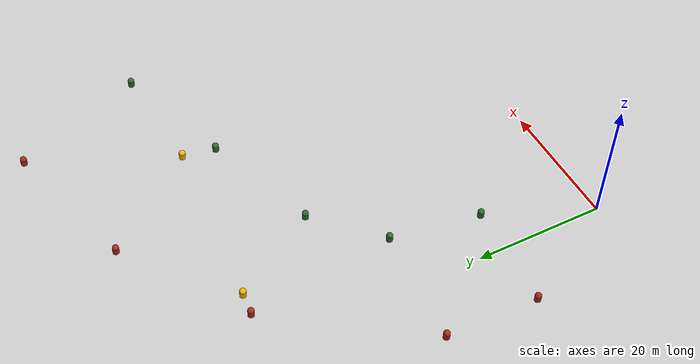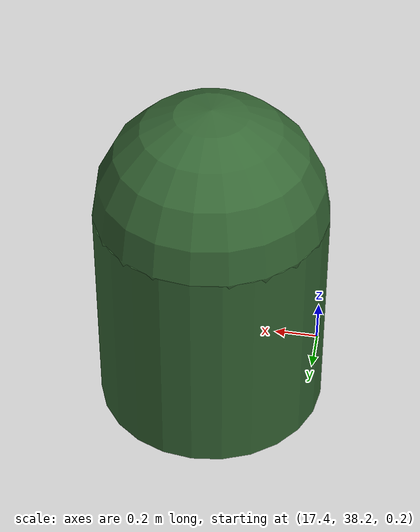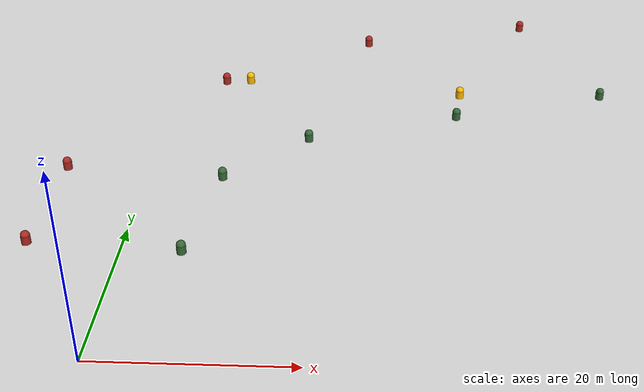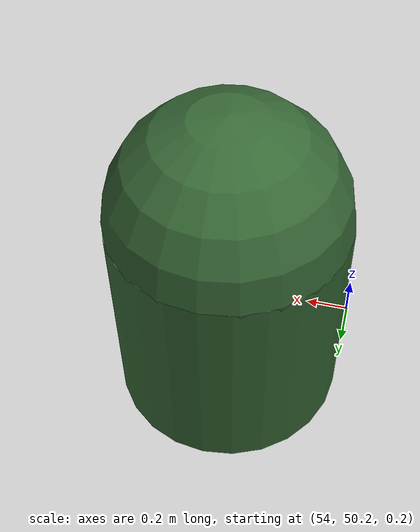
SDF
<sdf version="1.7">
 <world name="default">
  <light name="sun" type="directional">
   <pose>0 0 10 0 -0 0</pose>
   <diffuse>0.8 0.8 0.8 1</diffuse>
   <specular>0.2 0.2 0.2 1</specular>
   <attenuation>
    <range>1000</range>
    <constant>0.9</constant>
    <linear>0.01</linear>
    <quadratic>0.001</quadratic>
   </attenuation>
   <direction>-0.5 0.1 -0.9</direction>
   <spot><inner_angle>0</inner_angle><outer_angle>0</outer_angle><falloff>0</falloff></spot>
  </light>
  <physics name="default_physics" default="0" type="ode">
   <ode>
    <solver>
     <type>quick</type>
     <iters>100</iters>
     <sor>1</sor>
     <use_dynamic_moi_rescaling>0</use_dynamic_moi_rescaling>
    </solver>
    <constraints>
     <cfm>0</cfm>
     <erp>0.9</erp>
     <contact_max_correcting_vel>0.1</contact_max_correcting_vel>
     <contact_surface_layer>0</contact_surface_layer>
    </constraints>
   </ode>
   <real_time_update_rate>-1</real_time_update_rate>
   <max_step_size>0.001</max_step_size>
   <real_time_factor>1</real_time_factor>
  </physics>
  <gravity>0 0 -9.8</gravity>
  <magnetic_field>6e-06 2.3e-05 -4.2e-05</magnetic_field>
  <atmosphere type="adiabatic"/>
  <scene><ambient>0.4 0.4 0.4 1</ambient><background>0.7 0.7 0.7 1</background><shadows>0</shadows></scene>
  <spherical_coordinates>
   <surface_model>EARTH_WGS84</surface_model>
   <latitude_deg>0</latitude_deg>
   <longitude_deg>0</longitude_deg>
   <elevation>0</elevation>
   <heading_deg>0</heading_deg>
  </spherical_coordinates>
  <model name="kirmizi_duba_ral3000">
   <link name="link_0">
    <inertial>
     <mass>1</mass>
     <inertia><ixx>0.145833</ixx><ixy>0</ixy><ixz>0</ixz><iyy>0.145833</iyy><iyz>0</iyz><izz>0.125</izz></inertia>
    </inertial>
    <pose>0 0 -0.25 0 -0 0</pose>
    <gravity>0</gravity>
    <visual name="visual">
     <geometry><cylinder><radius>0.5</radius><length>1</length></cylinder></geometry>
     <material>
      <lighting>1</lighting>
      <script><uri>file://media/materials/scripts/gazebo.material</uri><name>Gazebo/Grey</name></script>
      <shader type="pixel"><normal_map>__default__</normal_map></shader>
      <ambient>0.655 0.161 0.125 1</ambient>
      <diffuse>0.655 0.161 0.125 1</diffuse>
      <specular>0.655 0.161 0.125 1</specular>
      <emissive>0.655 0.161 0.125 1</emissive>
     </material>
    </visual>
    <collision name="collision">
     <geometry><cylinder><radius>0.5</radius><length>1</length></cylinder></geometry>
     <surface>
      <friction>
       <ode><mu>1</mu><mu2>1</mu2><fdir1>0 0 0</fdir1><slip1>0</slip1><slip2>0</slip2></ode>
       <torsional>
        <coefficient>1</coefficient>
        <patch_radius>0</patch_radius>
        <surface_radius>0</surface_radius>
        <use_patch_radius>1</use_patch_radius>
        <ode><slip>0</slip></ode>
       </torsional>
      </friction>
      <bounce><restitution_coefficient>0</restitution_coefficient><threshold>1e+06</threshold></bounce>
      <contact>
       <collide_without_contact>0</collide_without_contact>
       <collide_without_contact_bitmask>1</collide_without_contact_bitmask>
       <collide_bitmask>1</collide_bitmask>
       <ode>
        <soft_cfm>0</soft_cfm>
        <soft_erp>0.2</soft_erp>
        <kp>1e+13</kp>
        <kd>1</kd>
        <max_vel>0.01</max_vel>
        <min_depth>0</min_depth>
       </ode>
       <bullet>
        <split_impulse>1</split_impulse>
        <split_impulse_penetration_threshold>-0.01</split_impulse_penetration_threshold>
        <soft_cfm>0</soft_cfm>
        <soft_erp>0.2</soft_erp>
        <kp>1e+13</kp>
        <kd>1</kd>
       </bullet>
      </contact>
     </surface>
    </collision>
   </link>
   <link name="link_1">
    <inertial>
     <mass>1</mass>
     <inertia><ixx>0.1</ixx><ixy>0</ixy><ixz>0</ixz><iyy>0.1</iyy><iyz>0</iyz><izz>0.1</izz></inertia>
    </inertial>
    <pose>0 0 0.25 0 -0 0</pose>
    <gravity>0</gravity>
    <visual name="visual">
     <geometry><sphere><radius>0.5</radius></sphere></geometry>
     <material>
      <lighting>1</lighting>
      <script><uri>file://media/materials/scripts/gazebo.material</uri><name>Gazebo/Grey</name></script>
      <shader type="pixel"><normal_map>__default__</normal_map></shader>
      <ambient>0.655 0.161 0.125 1</ambient>
      <diffuse>0.655 0.161 0.125 1</diffuse>
      <specular>0.655 0.161 0.125 1</specular>
      <emissive>0.655 0.161 0.125 1</emissive>
     </material>
    </visual>
    <collision name="collision">
     <geometry><sphere><radius>0.5</radius></sphere></geometry>
     <surface>
      <friction>
       <ode><mu>1</mu><mu2>1</mu2><fdir1>0 0 0</fdir1><slip1>0</slip1><slip2>0</slip2></ode>
       <torsional>
        <coefficient>1</coefficient>
        <patch_radius>0</patch_radius>
        <surface_radius>0</surface_radius>
        <use_patch_radius>1</use_patch_radius>
        <ode><slip>0</slip></ode>
       </torsional>
      </friction>
      <bounce><restitution_coefficient>0</restitution_coefficient><threshold>1e+06</threshold></bounce>
      <contact>
       <collide_without_contact>0</collide_without_contact>
       <collide_without_contact_bitmask>1</collide_without_contact_bitmask>
       <collide_bitmask>1</collide_bitmask>
       <ode>
        <soft_cfm>0</soft_cfm>
        <soft_erp>0.2</soft_erp>
        <kp>1e+13</kp>
        <kd>1</kd>
        <max_vel>0.01</max_vel>
        <min_depth>0</min_depth>
       </ode>
       <bullet>
        <split_impulse>1</split_impulse>
        <split_impulse_penetration_threshold>-0.01</split_impulse_penetration_threshold>
        <soft_cfm>0</soft_cfm>
        <soft_erp>0.2</soft_erp>
        <kp>1e+13</kp>
        <kd>1</kd>
       </bullet>
      </contact>
     </surface>
    </collision>
   </link>
   <static>0</static>
   <pose>-9.81686 16.9065 1 0 -0 0</pose>
  </model>
  <model name="kirmizi_duba_ral3000_0">
   <link name="link_0">
    <inertial>
     <mass>1</mass>
     <inertia><ixx>0.145833</ixx><ixy>0</ixy><ixz>0</ixz><iyy>0.145833</iyy><iyz>0</iyz><izz>0.125</izz></inertia>
    </inertial>
    <pose>0 0 -0.25 0 -0 0</pose>
    <gravity>0</gravity>
    <visual name="visual">
     <geometry><cylinder><radius>0.5</radius><length>1</length></cylinder></geometry>
     <material>
      <lighting>1</lighting>
      <script><uri>file://media/materials/scripts/gazebo.material</uri><name>Gazebo/Grey</name></script>
      <shader type="pixel"><normal_map>__default__</normal_map></shader>
      <ambient>0.655 0.161 0.125 1</ambient>
      <diffuse>0.655 0.161 0.125 1</diffuse>
      <specular>0.655 0.161 0.125 1</specular>
      <emissive>0.655 0.161 0.125 1</emissive>
     </material>
    </visual>
    <collision name="collision">
     <geometry><cylinder><radius>0.5</radius><length>1</length></cylinder></geometry>
     <surface>
      <friction>
       <ode><mu>1</mu><mu2>1</mu2><fdir1>0 0 0</fdir1><slip1>0</slip1><slip2>0</slip2></ode>
       <torsional>
        <coefficient>1</coefficient>
        <patch_radius>0</patch_radius>
        <surface_radius>0</surface_radius>
        <use_patch_radius>1</use_patch_radius>
        <ode><slip>0</slip></ode>
       </torsional>
      </friction>
      <bounce><restitution_coefficient>0</restitution_coefficient><threshold>1e+06</threshold></bounce>
      <contact>
       <collide_without_contact>0</collide_without_contact>
       <collide_without_contact_bitmask>1</collide_without_contact_bitmask>
       <collide_bitmask>1</collide_bitmask>
       <ode>
        <soft_cfm>0</soft_cfm>
        <soft_erp>0.2</soft_erp>
        <kp>1e+13</kp>
        <kd>1</kd>
        <max_vel>0.01</max_vel>
        <min_depth>0</min_depth>
       </ode>
       <bullet>
        <split_impulse>1</split_impulse>
        <split_impulse_penetration_threshold>-0.01</split_impulse_penetration_threshold>
        <soft_cfm>0</soft_cfm>
        <soft_erp>0.2</soft_erp>
        <kp>1e+13</kp>
        <kd>1</kd>
       </bullet>
      </contact>
     </surface>
    </collision>
   </link>
   <link name="link_1">
    <inertial>
     <mass>1</mass>
     <inertia><ixx>0.1</ixx><ixy>0</ixy><ixz>0</ixz><iyy>0.1</iyy><iyz>0</iyz><izz>0.1</izz></inertia>
    </inertial>
    <pose>0 0 0.25 0 -0 0</pose>
    <gravity>0</gravity>
    <visual name="visual">
     <geometry><sphere><radius>0.5</radius></sphere></geometry>
     <material>
      <lighting>1</lighting>
      <script><uri>file://media/materials/scripts/gazebo.material</uri><name>Gazebo/Grey</name></script>
      <shader type="pixel"><normal_map>__default__</normal_map></shader>
      <ambient>0.655 0.161 0.125 1</ambient>
      <diffuse>0.655 0.161 0.125 1</diffuse>
      <specular>0.655 0.161 0.125 1</specular>
      <emissive>0.655 0.161 0.125 1</emissive>
     </material>
    </visual>
    <collision name="collision">
     <geometry><sphere><radius>0.5</radius></sphere></geometry>
     <surface>
      <friction>
       <ode><mu>1</mu><mu2>1</mu2><fdir1>0 0 0</fdir1><slip1>0</slip1><slip2>0</slip2></ode>
       <torsional>
        <coefficient>1</coefficient>
        <patch_radius>0</patch_radius>
        <surface_radius>0</surface_radius>
        <use_patch_radius>1</use_patch_radius>
        <ode><slip>0</slip></ode>
       </torsional>
      </friction>
      <bounce><restitution_coefficient>0</restitution_coefficient><threshold>1e+06</threshold></bounce>
      <contact>
       <collide_without_contact>0</collide_without_contact>
       <collide_without_contact_bitmask>1</collide_without_contact_bitmask>
       <collide_bitmask>1</collide_bitmask>
       <ode>
        <soft_cfm>0</soft_cfm>
        <soft_erp>0.2</soft_erp>
        <kp>1e+13</kp>
        <kd>1</kd>
        <max_vel>0.01</max_vel>
        <min_depth>0</min_depth>
       </ode>
       <bullet>
        <split_impulse>1</split_impulse>
        <split_impulse_penetration_threshold>-0.01</split_impulse_penetration_threshold>
        <soft_cfm>0</soft_cfm>
        <soft_erp>0.2</soft_erp>
        <kp>1e+13</kp>
        <kd>1</kd>
       </bullet>
      </contact>
     </surface>
    </collision>
   </link>
   <static>0</static>
   <pose>-9.39586 31.2918 1 0 -0 0</pose>
  </model>
  <model name="kirmizi_duba_ral3000_1">
   <link name="link_0">
    <inertial>
     <mass>1</mass>
     <inertia><ixx>0.145833</ixx><ixy>0</ixy><ixz>0</ixz><iyy>0.145833</iyy><iyz>0</iyz><izz>0.125</izz></inertia>
    </inertial>
    <pose>0 0 -0.25 0 -0 0</pose>
    <gravity>0</gravity>
    <visual name="visual">
     <geometry><cylinder><radius>0.5</radius><length>1</length></cylinder></geometry>
     <material>
      <lighting>1</lighting>
      <script><uri>file://media/materials/scripts/gazebo.material</uri><name>Gazebo/Grey</name></script>
      <shader type="pixel"><normal_map>__default__</normal_map></shader>
      <ambient>0.655 0.161 0.125 1</ambient>
      <diffuse>0.655 0.161 0.125 1</diffuse>
      <specular>0.655 0.161 0.125 1</specular>
      <emissive>0.655 0.161 0.125 1</emissive>
     </material>
    </visual>
    <collision name="collision">
     <geometry><cylinder><radius>0.5</radius><length>1</length></cylinder></geometry>
     <surface>
      <friction>
       <ode><mu>1</mu><mu2>1</mu2><fdir1>0 0 0</fdir1><slip1>0</slip1><slip2>0</slip2></ode>
       <torsional>
        <coefficient>1</coefficient>
        <patch_radius>0</patch_radius>
        <surface_radius>0</surface_radius>
        <use_patch_radius>1</use_patch_radius>
        <ode><slip>0</slip></ode>
       </torsional>
      </friction>
      <bounce><restitution_coefficient>0</restitution_coefficient><threshold>1e+06</threshold></bounce>
      <contact>
       <collide_without_contact>0</collide_without_contact>
       <collide_without_contact_bitmask>1</collide_without_contact_bitmask>
       <collide_bitmask>1</collide_bitmask>
       <ode>
        <soft_cfm>0</soft_cfm>
        <soft_erp>0.2</soft_erp>
        <kp>1e+13</kp>
        <kd>1</kd>
        <max_vel>0.01</max_vel>
        <min_depth>0</min_depth>
       </ode>
       <bullet>
        <split_impulse>1</split_impulse>
        <split_impulse_penetration_threshold>-0.01</split_impulse_penetration_threshold>
        <soft_cfm>0</soft_cfm>
        <soft_erp>0.2</soft_erp>
        <kp>1e+13</kp>
        <kd>1</kd>
       </bullet>
      </contact>
     </surface>
    </collision>
   </link>
   <link name="link_1">
    <inertial>
     <mass>1</mass>
     <inertia><ixx>0.1</ixx><ixy>0</ixy><ixz>0</ixz><iyy>0.1</iyy><iyz>0</iyz><izz>0.1</izz></inertia>
    </inertial>
    <pose>0 0 0.25 0 -0 0</pose>
    <gravity>0</gravity>
    <visual name="visual">
     <geometry><sphere><radius>0.5</radius></sphere></geometry>
     <material>
      <lighting>1</lighting>
      <script><uri>file://media/materials/scripts/gazebo.material</uri><name>Gazebo/Grey</name></script>
      <shader type="pixel"><normal_map>__default__</normal_map></shader>
      <ambient>0.655 0.161 0.125 1</ambient>
      <diffuse>0.655 0.161 0.125 1</diffuse>
      <specular>0.655 0.161 0.125 1</specular>
      <emissive>0.655 0.161 0.125 1</emissive>
     </material>
    </visual>
    <collision name="collision">
     <geometry><sphere><radius>0.5</radius></sphere></geometry>
     <surface>
      <friction>
       <ode><mu>1</mu><mu2>1</mu2><fdir1>0 0 0</fdir1><slip1>0</slip1><slip2>0</slip2></ode>
       <torsional>
        <coefficient>1</coefficient>
        <patch_radius>0</patch_radius>
        <surface_radius>0</surface_radius>
        <use_patch_radius>1</use_patch_radius>
        <ode><slip>0</slip></ode>
       </torsional>
      </friction>
      <bounce><restitution_coefficient>0</restitution_coefficient><threshold>1e+06</threshold></bounce>
      <contact>
       <collide_without_contact>0</collide_without_contact>
       <collide_without_contact_bitmask>1</collide_without_contact_bitmask>
       <collide_bitmask>1</collide_bitmask>
       <ode>
        <soft_cfm>0</soft_cfm>
        <soft_erp>0.2</soft_erp>
        <kp>1e+13</kp>
        <kd>1</kd>
        <max_vel>0.01</max_vel>
        <min_depth>0</min_depth>
       </ode>
       <bullet>
        <split_impulse>1</split_impulse>
        <split_impulse_penetration_threshold>-0.01</split_impulse_penetration_threshold>
        <soft_cfm>0</soft_cfm>
        <soft_erp>0.2</soft_erp>
        <kp>1e+13</kp>
        <kd>1</kd>
       </bullet>
      </contact>
     </surface>
    </collision>
   </link>
   <static>0</static>
   <pose>5.96171 53.0696 1 0 -0 0</pose>
  </model>
  <model name="kirmizi_duba_ral3000_2">
   <link name="link_0">
    <inertial>
     <mass>1</mass>
     <inertia><ixx>0.145833</ixx><ixy>0</ixy><ixz>0</ixz><iyy>0.145833</iyy><iyz>0</iyz><izz>0.125</izz></inertia>
    </inertial>
    <pose>0 0 -0.25 0 -0 0</pose>
    <gravity>0</gravity>
    <visual name="visual">
     <geometry><cylinder><radius>0.5</radius><length>1</length></cylinder></geometry>
     <material>
      <lighting>1</lighting>
      <script><uri>file://media/materials/scripts/gazebo.material</uri><name>Gazebo/Grey</name></script>
      <shader type="pixel"><normal_map>__default__</normal_map></shader>
      <ambient>0.655 0.161 0.125 1</ambient>
      <diffuse>0.655 0.161 0.125 1</diffuse>
      <specular>0.655 0.161 0.125 1</specular>
      <emissive>0.655 0.161 0.125 1</emissive>
     </material>
    </visual>
    <collision name="collision">
     <geometry><cylinder><radius>0.5</radius><length>1</length></cylinder></geometry>
     <surface>
      <friction>
       <ode><mu>1</mu><mu2>1</mu2><fdir1>0 0 0</fdir1><slip1>0</slip1><slip2>0</slip2></ode>
       <torsional>
        <coefficient>1</coefficient>
        <patch_radius>0</patch_radius>
        <surface_radius>0</surface_radius>
        <use_patch_radius>1</use_patch_radius>
        <ode><slip>0</slip></ode>
       </torsional>
      </friction>
      <bounce><restitution_coefficient>0</restitution_coefficient><threshold>1e+06</threshold></bounce>
      <contact>
       <collide_without_contact>0</collide_without_contact>
       <collide_without_contact_bitmask>1</collide_without_contact_bitmask>
       <collide_bitmask>1</collide_bitmask>
       <ode>
        <soft_cfm>0</soft_cfm>
        <soft_erp>0.2</soft_erp>
        <kp>1e+13</kp>
        <kd>1</kd>
        <max_vel>0.01</max_vel>
        <min_depth>0</min_depth>
       </ode>
       <bullet>
        <split_impulse>1</split_impulse>
        <split_impulse_penetration_threshold>-0.01</split_impulse_penetration_threshold>
        <soft_cfm>0</soft_cfm>
        <soft_erp>0.2</soft_erp>
        <kp>1e+13</kp>
        <kd>1</kd>
       </bullet>
      </contact>
     </surface>
    </collision>
   </link>
   <link name="link_1">
    <inertial>
     <mass>1</mass>
     <inertia><ixx>0.1</ixx><ixy>0</ixy><ixz>0</ixz><iyy>0.1</iyy><iyz>0</iyz><izz>0.1</izz></inertia>
    </inertial>
    <pose>0 0 0.25 0 -0 0</pose>
    <gravity>0</gravity>
    <visual name="visual">
     <geometry><sphere><radius>0.5</radius></sphere></geometry>
     <material>
      <lighting>1</lighting>
      <script><uri>file://media/materials/scripts/gazebo.material</uri><name>Gazebo/Grey</name></script>
      <shader type="pixel"><normal_map>__default__</normal_map></shader>
      <ambient>0.655 0.161 0.125 1</ambient>
      <diffuse>0.655 0.161 0.125 1</diffuse>
      <specular>0.655 0.161 0.125 1</specular>
      <emissive>0.655 0.161 0.125 1</emissive>
     </material>
    </visual>
    <collision name="collision">
     <geometry><sphere><radius>0.5</radius></sphere></geometry>
     <surface>
      <friction>
       <ode><mu>1</mu><mu2>1</mu2><fdir1>0 0 0</fdir1><slip1>0</slip1><slip2>0</slip2></ode>
       <torsional>
        <coefficient>1</coefficient>
        <patch_radius>0</patch_radius>
        <surface_radius>0</surface_radius>
        <use_patch_radius>1</use_patch_radius>
        <ode><slip>0</slip></ode>
       </torsional>
      </friction>
      <bounce><restitution_coefficient>0</restitution_coefficient><threshold>1e+06</threshold></bounce>
      <contact>
       <collide_without_contact>0</collide_without_contact>
       <collide_without_contact_bitmask>1</collide_without_contact_bitmask>
       <collide_bitmask>1</collide_bitmask>
       <ode>
        <soft_cfm>0</soft_cfm>
        <soft_erp>0.2</soft_erp>
        <kp>1e+13</kp>
        <kd>1</kd>
        <max_vel>0.01</max_vel>
        <min_depth>0</min_depth>
       </ode>
       <bullet>
        <split_impulse>1</split_impulse>
        <split_impulse_penetration_threshold>-0.01</split_impulse_penetration_threshold>
        <soft_cfm>0</soft_cfm>
        <soft_erp>0.2</soft_erp>
        <kp>1e+13</kp>
        <kd>1</kd>
       </bullet>
      </contact>
     </surface>
    </collision>
   </link>
   <static>0</static>
   <pose>24.5043 65.3736 1 0 -0 0</pose>
  </model>
  <model name="kirmizi_duba_ral3000_3">
   <link name="link_0">
    <inertial>
     <mass>1</mass>
     <inertia><ixx>0.145833</ixx><ixy>0</ixy><ixz>0</ixz><iyy>0.145833</iyy><iyz>0</iyz><izz>0.125</izz></inertia>
    </inertial>
    <pose>0 0 -0.25 0 -0 0</pose>
    <gravity>0</gravity>
    <visual name="visual">
     <geometry><cylinder><radius>0.5</radius><length>1</length></cylinder></geometry>
     <material>
      <lighting>1</lighting>
      <script><uri>file://media/materials/scripts/gazebo.material</uri><name>Gazebo/Grey</name></script>
      <shader type="pixel"><normal_map>__default__</normal_map></shader>
      <ambient>0.655 0.161 0.125 1</ambient>
      <diffuse>0.655 0.161 0.125 1</diffuse>
      <specular>0.655 0.161 0.125 1</specular>
      <emissive>0.655 0.161 0.125 1</emissive>
     </material>
    </visual>
    <collision name="collision">
     <geometry><cylinder><radius>0.5</radius><length>1</length></cylinder></geometry>
     <surface>
      <friction>
       <ode><mu>1</mu><mu2>1</mu2><fdir1>0 0 0</fdir1><slip1>0</slip1><slip2>0</slip2></ode>
       <torsional>
        <coefficient>1</coefficient>
        <patch_radius>0</patch_radius>
        <surface_radius>0</surface_radius>
        <use_patch_radius>1</use_patch_radius>
        <ode><slip>0</slip></ode>
       </torsional>
      </friction>
      <bounce><restitution_coefficient>0</restitution_coefficient><threshold>1e+06</threshold></bounce>
      <contact>
       <collide_without_contact>0</collide_without_contact>
       <collide_without_contact_bitmask>1</collide_without_contact_bitmask>
       <collide_bitmask>1</collide_bitmask>
       <ode>
        <soft_cfm>0</soft_cfm>
        <soft_erp>0.2</soft_erp>
        <kp>1e+13</kp>
        <kd>1</kd>
        <max_vel>0.01</max_vel>
        <min_depth>0</min_depth>
       </ode>
       <bullet>
        <split_impulse>1</split_impulse>
        <split_impulse_penetration_threshold>-0.01</split_impulse_penetration_threshold>
        <soft_cfm>0</soft_cfm>
        <soft_erp>0.2</soft_erp>
        <kp>1e+13</kp>
        <kd>1</kd>
       </bullet>
      </contact>
     </surface>
    </collision>
   </link>
   <link name="link_1">
    <inertial>
     <mass>1</mass>
     <inertia><ixx>0.1</ixx><ixy>0</ixy><ixz>0</ixz><iyy>0.1</iyy><iyz>0</iyz><izz>0.1</izz></inertia>
    </inertial>
    <pose>0 0 0.25 0 -0 0</pose>
    <gravity>0</gravity>
    <visual name="visual">
     <geometry><sphere><radius>0.5</radius></sphere></geometry>
     <material>
      <lighting>1</lighting>
      <script><uri>file://media/materials/scripts/gazebo.material</uri><name>Gazebo/Grey</name></script>
      <shader type="pixel"><normal_map>__default__</normal_map></shader>
      <ambient>0.655 0.161 0.125 1</ambient>
      <diffuse>0.655 0.161 0.125 1</diffuse>
      <specular>0.655 0.161 0.125 1</specular>
      <emissive>0.655 0.161 0.125 1</emissive>
     </material>
    </visual>
    <collision name="collision">
     <geometry><sphere><radius>0.5</radius></sphere></geometry>
     <surface>
      <friction>
       <ode><mu>1</mu><mu2>1</mu2><fdir1>0 0 0</fdir1><slip1>0</slip1><slip2>0</slip2></ode>
       <torsional>
        <coefficient>1</coefficient>
        <patch_radius>0</patch_radius>
        <surface_radius>0</surface_radius>
        <use_patch_radius>1</use_patch_radius>
        <ode><slip>0</slip></ode>
       </torsional>
      </friction>
      <bounce><restitution_coefficient>0</restitution_coefficient><threshold>1e+06</threshold></bounce>
      <contact>
       <collide_without_contact>0</collide_without_contact>
       <collide_without_contact_bitmask>1</collide_without_contact_bitmask>
       <collide_bitmask>1</collide_bitmask>
       <ode>
        <soft_cfm>0</soft_cfm>
        <soft_erp>0.2</soft_erp>
        <kp>1e+13</kp>
        <kd>1</kd>
        <max_vel>0.01</max_vel>
        <min_depth>0</min_depth>
       </ode>
       <bullet>
        <split_impulse>1</split_impulse>
        <split_impulse_penetration_threshold>-0.01</split_impulse_penetration_threshold>
        <soft_cfm>0</soft_cfm>
        <soft_erp>0.2</soft_erp>
        <kp>1e+13</kp>
        <kd>1</kd>
       </bullet>
      </contact>
     </surface>
    </collision>
   </link>
   <static>0</static>
   <pose>46.4143 71.3397 1 0 -0 0</pose>
  </model>
  <model name="yesil_duba_ral6001_0">
   <link name="link_0">
    <inertial>
     <mass>1</mass>
     <inertia><ixx>0.145833</ixx><ixy>0</ixy><ixz>0</ixz><iyy>0.145833</iyy><iyz>0</iyz><izz>0.125</izz></inertia>
    </inertial>
    <pose>0 0 -0.25 0 -0 0</pose>
    <gravity>0</gravity>
    <visual name="visual">
     <geometry><cylinder><radius>0.5</radius><length>1</length></cylinder></geometry>
     <material>
      <lighting>1</lighting>
      <script><uri>file://media/materials/scripts/gazebo.material</uri><name>Gazebo/Grey</name></script>
      <shader type="pixel"><normal_map>__default__</normal_map></shader>
      <ambient>0.212 0.404 0.208 1</ambient>
      <diffuse>0.212 0.404 0.208 1</diffuse>
      <specular>0.212 0.404 0.208 1</specular>
      <emissive>0.212 0.404 0.208 1</emissive>
     </material>
    </visual>
    <collision name="collision">
     <geometry><cylinder><radius>0.5</radius><length>1</length></cylinder></geometry>
     <surface>
      <friction>
       <ode><mu>1</mu><mu2>1</mu2><fdir1>0 0 0</fdir1><slip1>0</slip1><slip2>0</slip2></ode>
       <torsional>
        <coefficient>1</coefficient>
        <patch_radius>0</patch_radius>
        <surface_radius>0</surface_radius>
        <use_patch_radius>1</use_patch_radius>
        <ode><slip>0</slip></ode>
       </torsional>
      </friction>
      <bounce><restitution_coefficient>0</restitution_coefficient><threshold>1e+06</threshold></bounce>
      <contact>
       <collide_without_contact>0</collide_without_contact>
       <collide_without_contact_bitmask>1</collide_without_contact_bitmask>
       <collide_bitmask>1</collide_bitmask>
       <ode>
        <soft_cfm>0</soft_cfm>
        <soft_erp>0.2</soft_erp>
        <kp>1e+13</kp>
        <kd>1</kd>
        <max_vel>0.01</max_vel>
        <min_depth>0</min_depth>
       </ode>
       <bullet>
        <split_impulse>1</split_impulse>
        <split_impulse_penetration_threshold>-0.01</split_impulse_penetration_threshold>
        <soft_cfm>0</soft_cfm>
        <soft_erp>0.2</soft_erp>
        <kp>1e+13</kp>
        <kd>1</kd>
       </bullet>
      </contact>
     </surface>
    </collision>
   </link>
   <link name="link_1">
    <inertial>
     <mass>1</mass>
     <inertia><ixx>0.1</ixx><ixy>0</ixy><ixz>0</ixz><iyy>0.1</iyy><iyz>0</iyz><izz>0.1</izz></inertia>
    </inertial>
    <pose>0 0 0.25 0 -0 0</pose>
    <gravity>0</gravity>
    <visual name="visual">
     <geometry><sphere><radius>0.5</radius></sphere></geometry>
     <material>
      <lighting>1</lighting>
      <script><uri>file://media/materials/scripts/gazebo.material</uri><name>Gazebo/Grey</name></script>
      <shader type="pixel"><normal_map>__default__</normal_map></shader>
      <ambient>0.212 0.404 0.208 1</ambient>
      <diffuse>0.212 0.404 0.208 1</diffuse>
      <specular>0.212 0.404 0.208 1</specular>
      <emissive>0.212 0.404 0.208 1</emissive>
     </material>
    </visual>
    <collision name="collision">
     <geometry><sphere><radius>0.5</radius></sphere></geometry>
     <surface>
      <friction>
       <ode><mu>1</mu><mu2>1</mu2><fdir1>0 0 0</fdir1><slip1>0</slip1><slip2>0</slip2></ode>
       <torsional>
        <coefficient>1</coefficient>
        <patch_radius>0</patch_radius>
        <surface_radius>0</surface_radius>
        <use_patch_radius>1</use_patch_radius>
        <ode><slip>0</slip></ode>
       </torsional>
      </friction>
      <bounce><restitution_coefficient>0</restitution_coefficient><threshold>1e+06</threshold></bounce>
      <contact>
       <collide_without_contact>0</collide_without_contact>
       <collide_without_contact_bitmask>1</collide_without_contact_bitmask>
       <collide_bitmask>1</collide_bitmask>
       <ode>
        <soft_cfm>0</soft_cfm>
        <soft_erp>0.2</soft_erp>
        <kp>1e+13</kp>
        <kd>1</kd>
        <max_vel>0.01</max_vel>
        <min_depth>0</min_depth>
       </ode>
       <bullet>
        <split_impulse>1</split_impulse>
        <split_impulse_penetration_threshold>-0.01</split_impulse_penetration_threshold>
        <soft_cfm>0</soft_cfm>
        <soft_erp>0.2</soft_erp>
        <kp>1e+13</kp>
        <kd>1</kd>
       </bullet>
      </contact>
     </surface>
    </collision>
   </link>
   <static>0</static>
   <pose>54.5028 50.6715 1 0 -0 0</pose>
  </model>
  <model name="yesil_duba_ral6001_1">
   <link name="link_0">
    <inertial>
     <mass>1</mass>
     <inertia><ixx>0.145833</ixx><ixy>0</ixy><ixz>0</ixz><iyy>0.145833</iyy><iyz>0</iyz><izz>0.125</izz></inertia>
    </inertial>
    <pose>0 0 -0.25 0 -0 0</pose>
    <gravity>0</gravity>
    <visual name="visual">
     <geometry><cylinder><radius>0.5</radius><length>1</length></cylinder></geometry>
     <material>
      <lighting>1</lighting>
      <script><uri>file://media/materials/scripts/gazebo.material</uri><name>Gazebo/Grey</name></script>
      <shader type="pixel"><normal_map>__default__</normal_map></shader>
      <ambient>0.212 0.404 0.208 1</ambient>
      <diffuse>0.212 0.404 0.208 1</diffuse>
      <specular>0.212 0.404 0.208 1</specular>
      <emissive>0.212 0.404 0.208 1</emissive>
     </material>
    </visual>
    <collision name="collision">
     <geometry><cylinder><radius>0.5</radius><length>1</length></cylinder></geometry>
     <surface>
      <friction>
       <ode><mu>1</mu><mu2>1</mu2><fdir1>0 0 0</fdir1><slip1>0</slip1><slip2>0</slip2></ode>
       <torsional>
        <coefficient>1</coefficient>
        <patch_radius>0</patch_radius>
        <surface_radius>0</surface_radius>
        <use_patch_radius>1</use_patch_radius>
        <ode><slip>0</slip></ode>
       </torsional>
      </friction>
      <bounce><restitution_coefficient>0</restitution_coefficient><threshold>1e+06</threshold></bounce>
      <contact>
       <collide_without_contact>0</collide_without_contact>
       <collide_without_contact_bitmask>1</collide_without_contact_bitmask>
       <collide_bitmask>1</collide_bitmask>
       <ode>
        <soft_cfm>0</soft_cfm>
        <soft_erp>0.2</soft_erp>
        <kp>1e+13</kp>
        <kd>1</kd>
        <max_vel>0.01</max_vel>
        <min_depth>0</min_depth>
       </ode>
       <bullet>
        <split_impulse>1</split_impulse>
        <split_impulse_penetration_threshold>-0.01</split_impulse_penetration_threshold>
        <soft_cfm>0</soft_cfm>
        <soft_erp>0.2</soft_erp>
        <kp>1e+13</kp>
        <kd>1</kd>
       </bullet>
      </contact>
     </surface>
    </collision>
   </link>
   <link name="link_1">
    <inertial>
     <mass>1</mass>
     <inertia><ixx>0.1</ixx><ixy>0</ixy><ixz>0</ixz><iyy>0.1</iyy><iyz>0</iyz><izz>0.1</izz></inertia>
    </inertial>
    <pose>0 0 0.25 0 -0 0</pose>
    <gravity>0</gravity>
    <visual name="visual">
     <geometry><sphere><radius>0.5</radius></sphere></geometry>
     <material>
      <lighting>1</lighting>
      <script><uri>file://media/materials/scripts/gazebo.material</uri><name>Gazebo/Grey</name></script>
      <shader type="pixel"><normal_map>__default__</normal_map></shader>
      <ambient>0.212 0.404 0.208 1</ambient>
      <diffuse>0.212 0.404 0.208 1</diffuse>
      <specular>0.212 0.404 0.208 1</specular>
      <emissive>0.212 0.404 0.208 1</emissive>
     </material>
    </visual>
    <collision name="collision">
     <geometry><sphere><radius>0.5</radius></sphere></geometry>
     <surface>
      <friction>
       <ode><mu>1</mu><mu2>1</mu2><fdir1>0 0 0</fdir1><slip1>0</slip1><slip2>0</slip2></ode>
       <torsional>
        <coefficient>1</coefficient>
        <patch_radius>0</patch_radius>
        <surface_radius>0</surface_radius>
        <use_patch_radius>1</use_patch_radius>
        <ode><slip>0</slip></ode>
       </torsional>
      </friction>
      <bounce><restitution_coefficient>0</restitution_coefficient><threshold>1e+06</threshold></bounce>
      <contact>
       <collide_without_contact>0</collide_without_contact>
       <collide_without_contact_bitmask>1</collide_without_contact_bitmask>
       <collide_bitmask>1</collide_bitmask>
       <ode>
        <soft_cfm>0</soft_cfm>
        <soft_erp>0.2</soft_erp>
        <kp>1e+13</kp>
        <kd>1</kd>
        <max_vel>0.01</max_vel>
        <min_depth>0</min_depth>
       </ode>
       <bullet>
        <split_impulse>1</split_impulse>
        <split_impulse_penetration_threshold>-0.01</split_impulse_penetration_threshold>
        <soft_cfm>0</soft_cfm>
        <soft_erp>0.2</soft_erp>
        <kp>1e+13</kp>
        <kd>1</kd>
       </bullet>
      </contact>
     </surface>
    </collision>
   </link>
   <static>0</static>
   <pose>35.7824 44.6226 1 0 -0 0</pose>
  </model>
  <model name="yesil_duba_ral6001_2">
   <link name="link_0">
    <inertial>
     <mass>1</mass>
     <inertia><ixx>0.145833</ixx><ixy>0</ixy><ixz>0</ixz><iyy>0.145833</iyy><iyz>0</iyz><izz>0.125</izz></inertia>
    </inertial>
    <pose>0 0 -0.25 0 -0 0</pose>
    <gravity>0</gravity>
    <visual name="visual">
     <geometry><cylinder><radius>0.5</radius><length>1</length></cylinder></geometry>
     <material>
      <lighting>1</lighting>
      <script><uri>file://media/materials/scripts/gazebo.material</uri><name>Gazebo/Grey</name></script>
      <shader type="pixel"><normal_map>__default__</normal_map></shader>
      <ambient>0.212 0.404 0.208 1</ambient>
      <diffuse>0.212 0.404 0.208 1</diffuse>
      <specular>0.212 0.404 0.208 1</specular>
      <emissive>0.212 0.404 0.208 1</emissive>
     </material>
    </visual>
    <collision name="collision">
     <geometry><cylinder><radius>0.5</radius><length>1</length></cylinder></geometry>
     <surface>
      <friction>
       <ode><mu>1</mu><mu2>1</mu2><fdir1>0 0 0</fdir1><slip1>0</slip1><slip2>0</slip2></ode>
       <torsional>
        <coefficient>1</coefficient>
        <patch_radius>0</patch_radius>
        <surface_radius>0</surface_radius>
        <use_patch_radius>1</use_patch_radius>
        <ode><slip>0</slip></ode>
       </torsional>
      </friction>
      <bounce><restitution_coefficient>0</restitution_coefficient><threshold>1e+06</threshold></bounce>
      <contact>
       <collide_without_contact>0</collide_without_contact>
       <collide_without_contact_bitmask>1</collide_without_contact_bitmask>
       <collide_bitmask>1</collide_bitmask>
       <ode>
        <soft_cfm>0</soft_cfm>
        <soft_erp>0.2</soft_erp>
        <kp>1e+13</kp>
        <kd>1</kd>
        <max_vel>0.01</max_vel>
        <min_depth>0</min_depth>
       </ode>
       <bullet>
        <split_impulse>1</split_impulse>
        <split_impulse_penetration_threshold>-0.01</split_impulse_penetration_threshold>
        <soft_cfm>0</soft_cfm>
        <soft_erp>0.2</soft_erp>
        <kp>1e+13</kp>
        <kd>1</kd>
       </bullet>
      </contact>
     </surface>
    </collision>
   </link>
   <link name="link_1">
    <inertial>
     <mass>1</mass>
     <inertia><ixx>0.1</ixx><ixy>0</ixy><ixz>0</ixz><iyy>0.1</iyy><iyz>0</iyz><izz>0.1</izz></inertia>
    </inertial>
    <pose>0 0 0.25 0 -0 0</pose>
    <gravity>0</gravity>
    <visual name="visual">
     <geometry><sphere><radius>0.5</radius></sphere></geometry>
     <material>
      <lighting>1</lighting>
      <script><uri>file://media/materials/scripts/gazebo.material</uri><name>Gazebo/Grey</name></script>
      <shader type="pixel"><normal_map>__default__</normal_map></shader>
      <ambient>0.212 0.404 0.208 1</ambient>
      <diffuse>0.212 0.404 0.208 1</diffuse>
      <specular>0.212 0.404 0.208 1</specular>
      <emissive>0.212 0.404 0.208 1</emissive>
     </material>
    </visual>
    <collision name="collision">
     <geometry><sphere><radius>0.5</radius></sphere></geometry>
     <surface>
      <friction>
       <ode><mu>1</mu><mu2>1</mu2><fdir1>0 0 0</fdir1><slip1>0</slip1><slip2>0</slip2></ode>
       <torsional>
        <coefficient>1</coefficient>
        <patch_radius>0</patch_radius>
        <surface_radius>0</surface_radius>
        <use_patch_radius>1</use_patch_radius>
        <ode><slip>0</slip></ode>
       </torsional>
      </friction>
      <bounce><restitution_coefficient>0</restitution_coefficient><threshold>1e+06</threshold></bounce>
      <contact>
       <collide_without_contact>0</collide_without_contact>
       <collide_without_contact_bitmask>1</collide_without_contact_bitmask>
       <collide_bitmask>1</collide_bitmask>
       <ode>
        <soft_cfm>0</soft_cfm>
        <soft_erp>0.2</soft_erp>
        <kp>1e+13</kp>
        <kd>1</kd>
        <max_vel>0.01</max_vel>
        <min_depth>0</min_depth>
       </ode>
       <bullet>
        <split_impulse>1</split_impulse>
        <split_impulse_penetration_threshold>-0.01</split_impulse_penetration_threshold>
        <soft_cfm>0</soft_cfm>
        <soft_erp>0.2</soft_erp>
        <kp>1e+13</kp>
        <kd>1</kd>
       </bullet>
      </contact>
     </surface>
    </collision>
   </link>
   <static>0</static>
   <pose>17.8355 38.6123 1 0 -0 0</pose>
  </model>
  <model name="yesil_duba_ral6001_3">
   <link name="link_0">
    <inertial>
     <mass>1</mass>
     <inertia><ixx>0.145833</ixx><ixy>0</ixy><ixz>0</ixz><iyy>0.145833</iyy><iyz>0</iyz><izz>0.125</izz></inertia>
    </inertial>
    <pose>0 0 -0.25 0 -0 0</pose>
    <gravity>0</gravity>
    <visual name="visual">
     <geometry><cylinder><radius>0.5</radius><length>1</length></cylinder></geometry>
     <material>
      <lighting>1</lighting>
      <script><uri>file://media/materials/scripts/gazebo.material</uri><name>Gazebo/Grey</name></script>
      <shader type="pixel"><normal_map>__default__</normal_map></shader>
      <ambient>0.212 0.404 0.208 1</ambient>
      <diffuse>0.212 0.404 0.208 1</diffuse>
      <specular>0.212 0.404 0.208 1</specular>
      <emissive>0.212 0.404 0.208 1</emissive>
     </material>
    </visual>
    <collision name="collision">
     <geometry><cylinder><radius>0.5</radius><length>1</length></cylinder></geometry>
     <surface>
      <friction>
       <ode><mu>1</mu><mu2>1</mu2><fdir1>0 0 0</fdir1><slip1>0</slip1><slip2>0</slip2></ode>
       <torsional>
        <coefficient>1</coefficient>
        <patch_radius>0</patch_radius>
        <surface_radius>0</surface_radius>
        <use_patch_radius>1</use_patch_radius>
        <ode><slip>0</slip></ode>
       </torsional>
      </friction>
      <bounce><restitution_coefficient>0</restitution_coefficient><threshold>1e+06</threshold></bounce>
      <contact>
       <collide_without_contact>0</collide_without_contact>
       <collide_without_contact_bitmask>1</collide_without_contact_bitmask>
       <collide_bitmask>1</collide_bitmask>
       <ode>
        <soft_cfm>0</soft_cfm>
        <soft_erp>0.2</soft_erp>
        <kp>1e+13</kp>
        <kd>1</kd>
        <max_vel>0.01</max_vel>
        <min_depth>0</min_depth>
       </ode>
       <bullet>
        <split_impulse>1</split_impulse>
        <split_impulse_penetration_threshold>-0.01</split_impulse_penetration_threshold>
        <soft_cfm>0</soft_cfm>
        <soft_erp>0.2</soft_erp>
        <kp>1e+13</kp>
        <kd>1</kd>
       </bullet>
      </contact>
     </surface>
    </collision>
   </link>
   <link name="link_1">
    <inertial>
     <mass>1</mass>
     <inertia><ixx>0.1</ixx><ixy>0</ixy><ixz>0</ixz><iyy>0.1</iyy><iyz>0</iyz><izz>0.1</izz></inertia>
    </inertial>
    <pose>0 0 0.25 0 -0 0</pose>
    <gravity>0</gravity>
    <visual name="visual">
     <geometry><sphere><radius>0.5</radius></sphere></geometry>
     <material>
      <lighting>1</lighting>
      <script><uri>file://media/materials/scripts/gazebo.material</uri><name>Gazebo/Grey</name></script>
      <shader type="pixel"><normal_map>__default__</normal_map></shader>
      <ambient>0.212 0.404 0.208 1</ambient>
      <diffuse>0.212 0.404 0.208 1</diffuse>
      <specular>0.212 0.404 0.208 1</specular>
      <emissive>0.212 0.404 0.208 1</emissive>
     </material>
    </visual>
    <collision name="collision">
     <geometry><sphere><radius>0.5</radius></sphere></geometry>
     <surface>
      <friction>
       <ode><mu>1</mu><mu2>1</mu2><fdir1>0 0 0</fdir1><slip1>0</slip1><slip2>0</slip2></ode>
       <torsional>
        <coefficient>1</coefficient>
        <patch_radius>0</patch_radius>
        <surface_radius>0</surface_radius>
        <use_patch_radius>1</use_patch_radius>
        <ode><slip>0</slip></ode>
       </torsional>
      </friction>
      <bounce><restitution_coefficient>0</restitution_coefficient><threshold>1e+06</threshold></bounce>
      <contact>
       <collide_without_contact>0</collide_without_contact>
       <collide_without_contact_bitmask>1</collide_without_contact_bitmask>
       <collide_bitmask>1</collide_bitmask>
       <ode>
        <soft_cfm>0</soft_cfm>
        <soft_erp>0.2</soft_erp>
        <kp>1e+13</kp>
        <kd>1</kd>
        <max_vel>0.01</max_vel>
        <min_depth>0</min_depth>
       </ode>
       <bullet>
        <split_impulse>1</split_impulse>
        <split_impulse_penetration_threshold>-0.01</split_impulse_penetration_threshold>
        <soft_cfm>0</soft_cfm>
        <soft_erp>0.2</soft_erp>
        <kp>1e+13</kp>
        <kd>1</kd>
       </bullet>
      </contact>
     </surface>
    </collision>
   </link>
   <static>0</static>
   <pose>8.67615 29.8295 1 0 -0 0</pose>
  </model>
  <model name="yesil_duba_ral6001_4">
   <link name="link_0">
    <inertial>
     <mass>1</mass>
     <inertia><ixx>0.145833</ixx><ixy>0</ixy><ixz>0</ixz><iyy>0.145833</iyy><iyz>0</iyz><izz>0.125</izz></inertia>
    </inertial>
    <pose>0 0 -0.25 0 -0 0</pose>
    <gravity>0</gravity>
    <visual name="visual">
     <geometry><cylinder><radius>0.5</radius><length>1</length></cylinder></geometry>
     <material>
      <lighting>1</lighting>
      <script><uri>file://media/materials/scripts/gazebo.material</uri><name>Gazebo/Grey</name></script>
      <shader type="pixel"><normal_map>__default__</normal_map></shader>
      <ambient>0.212 0.404 0.208 1</ambient>
      <diffuse>0.212 0.404 0.208 1</diffuse>
      <specular>0.212 0.404 0.208 1</specular>
      <emissive>0.212 0.404 0.208 1</emissive>
     </material>
    </visual>
    <collision name="collision">
     <geometry><cylinder><radius>0.5</radius><length>1</length></cylinder></geometry>
     <surface>
      <friction>
       <ode><mu>1</mu><mu2>1</mu2><fdir1>0 0 0</fdir1><slip1>0</slip1><slip2>0</slip2></ode>
       <torsional>
        <coefficient>1</coefficient>
        <patch_radius>0</patch_radius>
        <surface_radius>0</surface_radius>
        <use_patch_radius>1</use_patch_radius>
        <ode><slip>0</slip></ode>
       </torsional>
      </friction>
      <bounce><restitution_coefficient>0</restitution_coefficient><threshold>1e+06</threshold></bounce>
      <contact>
       <collide_without_contact>0</collide_without_contact>
       <collide_without_contact_bitmask>1</collide_without_contact_bitmask>
       <collide_bitmask>1</collide_bitmask>
       <ode>
        <soft_cfm>0</soft_cfm>
        <soft_erp>0.2</soft_erp>
        <kp>1e+13</kp>
        <kd>1</kd>
        <max_vel>0.01</max_vel>
        <min_depth>0</min_depth>
       </ode>
       <bullet>
        <split_impulse>1</split_impulse>
        <split_impulse_penetration_threshold>-0.01</split_impulse_penetration_threshold>
        <soft_cfm>0</soft_cfm>
        <soft_erp>0.2</soft_erp>
        <kp>1e+13</kp>
        <kd>1</kd>
       </bullet>
      </contact>
     </surface>
    </collision>
   </link>
   <link name="link_1">
    <inertial>
     <mass>1</mass>
     <inertia><ixx>0.1</ixx><ixy>0</ixy><ixz>0</ixz><iyy>0.1</iyy><iyz>0</iyz><izz>0.1</izz></inertia>
    </inertial>
    <pose>0 0 0.25 0 -0 0</pose>
    <gravity>0</gravity>
    <visual name="visual">
     <geometry><sphere><radius>0.5</radius></sphere></geometry>
     <material>
      <lighting>1</lighting>
      <script><uri>file://media/materials/scripts/gazebo.material</uri><name>Gazebo/Grey</name></script>
      <shader type="pixel"><normal_map>__default__</normal_map></shader>
      <ambient>0.212 0.404 0.208 1</ambient>
      <diffuse>0.212 0.404 0.208 1</diffuse>
      <specular>0.212 0.404 0.208 1</specular>
      <emissive>0.212 0.404 0.208 1</emissive>
     </material>
    </visual>
    <collision name="collision">
     <geometry><sphere><radius>0.5</radius></sphere></geometry>
     <surface>
      <friction>
       <ode><mu>1</mu><mu2>1</mu2><fdir1>0 0 0</fdir1><slip1>0</slip1><slip2>0</slip2></ode>
       <torsional>
        <coefficient>1</coefficient>
        <patch_radius>0</patch_radius>
        <surface_radius>0</surface_radius>
        <use_patch_radius>1</use_patch_radius>
        <ode><slip>0</slip></ode>
       </torsional>
      </friction>
      <bounce><restitution_coefficient>0</restitution_coefficient><threshold>1e+06</threshold></bounce>
      <contact>
       <collide_without_contact>0</collide_without_contact>
       <collide_without_contact_bitmask>1</collide_without_contact_bitmask>
       <collide_bitmask>1</collide_bitmask>
       <ode>
        <soft_cfm>0</soft_cfm>
        <soft_erp>0.2</soft_erp>
        <kp>1e+13</kp>
        <kd>1</kd>
        <max_vel>0.01</max_vel>
        <min_depth>0</min_depth>
       </ode>
       <bullet>
        <split_impulse>1</split_impulse>
        <split_impulse_penetration_threshold>-0.01</split_impulse_penetration_threshold>
        <soft_cfm>0</soft_cfm>
        <soft_erp>0.2</soft_erp>
        <kp>1e+13</kp>
        <kd>1</kd>
       </bullet>
      </contact>
     </surface>
    </collision>
   </link>
   <static>0</static>
   <pose>6.44428 15.8872 1 0 -0 0</pose>
  </model>
  <model name="sari_duba_ral1021">
   <link name="link_0">
    <inertial>
     <mass>1</mass>
     <inertia><ixx>0.145833</ixx><ixy>0</ixy><ixz>0</ixz><iyy>0.145833</iyy><iyz>0</iyz><izz>0.125</izz></inertia>
    </inertial>
    <pose>0 0 -0.25 0 -0 0</pose>
    <gravity>0</gravity>
    <visual name="visual">
     <geometry><cylinder><radius>0.5</radius><length>1</length></cylinder></geometry>
     <material>
      <lighting>1</lighting>
      <script><uri>file://media/materials/scripts/gazebo.material</uri><name>Gazebo/Grey</name></script>
      <shader type="pixel"><normal_map>__default__</normal_map></shader>
      <ambient>0.965 0.714 0 1</ambient>
      <diffuse>0.965 0.714 0 1</diffuse>
      <specular>0.965 0.714 0 1</specular>
      <emissive>0.965 0.714 0 1</emissive>
     </material>
    </visual>
    <collision name="collision">
     <geometry><cylinder><radius>0.5</radius><length>1</length></cylinder></geometry>
     <surface>
      <friction>
       <ode><mu>1</mu><mu2>1</mu2><fdir1>0 0 0</fdir1><slip1>0</slip1><slip2>0</slip2></ode>
       <torsional>
        <coefficient>1</coefficient>
        <patch_radius>0</patch_radius>
        <surface_radius>0</surface_radius>
        <use_patch_radius>1</use_patch_radius>
        <ode><slip>0</slip></ode>
       </torsional>
      </friction>
      <bounce><restitution_coefficient>0</restitution_coefficient><threshold>1e+06</threshold></bounce>
      <contact>
       <collide_without_contact>0</collide_without_contact>
       <collide_without_contact_bitmask>1</collide_without_contact_bitmask>
       <collide_bitmask>1</collide_bitmask>
       <ode>
        <soft_cfm>0</soft_cfm>
        <soft_erp>0.2</soft_erp>
        <kp>1e+13</kp>
        <kd>1</kd>
        <max_vel>0.01</max_vel>
        <min_depth>0</min_depth>
       </ode>
       <bullet>
        <split_impulse>1</split_impulse>
        <split_impulse_penetration_threshold>-0.01</split_impulse_penetration_threshold>
        <soft_cfm>0</soft_cfm>
        <soft_erp>0.2</soft_erp>
        <kp>1e+13</kp>
        <kd>1</kd>
       </bullet>
      </contact>
     </surface>
    </collision>
   </link>
   <link name="link_1">
    <inertial>
     <mass>1</mass>
     <inertia><ixx>0.1</ixx><ixy>0</ixy><ixz>0</ixz><iyy>0.1</iyy><iyz>0</iyz><izz>0.1</izz></inertia>
    </inertial>
    <pose>0 0 0.25 0 -0 0</pose>
    <gravity>0</gravity>
    <visual name="visual">
     <geometry><sphere><radius>0.5</radius></sphere></geometry>
     <material>
      <lighting>1</lighting>
      <script><uri>file://media/materials/scripts/gazebo.material</uri><name>Gazebo/Grey</name></script>
      <shader type="pixel"><normal_map>__default__</normal_map></shader>
      <ambient>0.965 0.714 0 1</ambient>
      <diffuse>0.965 0.714 0 1</diffuse>
      <specular>0.965 0.714 0 1</specular>
      <emissive>0.965 0.714 0 1</emissive>
     </material>
    </visual>
    <collision name="collision">
     <geometry><sphere><radius>0.5</radius></sphere></geometry>
     <surface>
      <friction>
       <ode><mu>1</mu><mu2>1</mu2><fdir1>0 0 0</fdir1><slip1>0</slip1><slip2>0</slip2></ode>
       <torsional>
        <coefficient>1</coefficient>
        <patch_radius>0</patch_radius>
        <surface_radius>0</surface_radius>
        <use_patch_radius>1</use_patch_radius>
        <ode><slip>0</slip></ode>
       </torsional>
      </friction>
      <bounce><restitution_coefficient>0</restitution_coefficient><threshold>1e+06</threshold></bounce>
      <contact>
       <collide_without_contact>0</collide_without_contact>
       <collide_without_contact_bitmask>1</collide_without_contact_bitmask>
       <collide_bitmask>1</collide_bitmask>
       <ode>
        <soft_cfm>0</soft_cfm>
        <soft_erp>0.2</soft_erp>
        <kp>1e+13</kp>
        <kd>1</kd>
        <max_vel>0.01</max_vel>
        <min_depth>0</min_depth>
       </ode>
       <bullet>
        <split_impulse>1</split_impulse>
        <split_impulse_penetration_threshold>-0.01</split_impulse_penetration_threshold>
        <soft_cfm>0</soft_cfm>
        <soft_erp>0.2</soft_erp>
        <kp>1e+13</kp>
        <kd>1</kd>
       </bullet>
      </contact>
     </surface>
    </collision>
   </link>
   <static>0</static>
   <pose>36.4715 49.8068 1.26203 0 -0 0</pose>
  </model>
  <model name="sari_duba_ral1021_0">
   <link name="link_0">
    <inertial>
     <mass>1</mass>
     <inertia><ixx>0.145833</ixx><ixy>0</ixy><ixz>0</ixz><iyy>0.145833</iyy><iyz>0</iyz><izz>0.125</izz></inertia>
    </inertial>
    <pose>0 0 -0.25 0 -0 0</pose>
    <gravity>0</gravity>
    <visual name="visual">
     <geometry><cylinder><radius>0.5</radius><length>1</length></cylinder></geometry>
     <material>
      <lighting>1</lighting>
      <script><uri>file://media/materials/scripts/gazebo.material</uri><name>Gazebo/Grey</name></script>
      <shader type="pixel"><normal_map>__default__</normal_map></shader>
      <ambient>0.965 0.714 0 1</ambient>
      <diffuse>0.965 0.714 0 1</diffuse>
      <specular>0.965 0.714 0 1</specular>
      <emissive>0.965 0.714 0 1</emissive>
     </material>
    </visual>
    <collision name="collision">
     <geometry><cylinder><radius>0.5</radius><length>1</length></cylinder></geometry>
     <surface>
      <friction>
       <ode><mu>1</mu><mu2>1</mu2><fdir1>0 0 0</fdir1><slip1>0</slip1><slip2>0</slip2></ode>
       <torsional>
        <coefficient>1</coefficient>
        <patch_radius>0</patch_radius>
        <surface_radius>0</surface_radius>
        <use_patch_radius>1</use_patch_radius>
        <ode><slip>0</slip></ode>
       </torsional>
      </friction>
      <bounce><restitution_coefficient>0</restitution_coefficient><threshold>1e+06</threshold></bounce>
      <contact>
       <collide_without_contact>0</collide_without_contact>
       <collide_without_contact_bitmask>1</collide_without_contact_bitmask>
       <collide_bitmask>1</collide_bitmask>
       <ode>
        <soft_cfm>0</soft_cfm>
        <soft_erp>0.2</soft_erp>
        <kp>1e+13</kp>
        <kd>1</kd>
        <max_vel>0.01</max_vel>
        <min_depth>0</min_depth>
       </ode>
       <bullet>
        <split_impulse>1</split_impulse>
        <split_impulse_penetration_threshold>-0.01</split_impulse_penetration_threshold>
        <soft_cfm>0</soft_cfm>
        <soft_erp>0.2</soft_erp>
        <kp>1e+13</kp>
        <kd>1</kd>
       </bullet>
      </contact>
     </surface>
    </collision>
   </link>
   <link name="link_1">
    <inertial>
     <mass>1</mass>
     <inertia><ixx>0.1</ixx><ixy>0</ixy><ixz>0</ixz><iyy>0.1</iyy><iyz>0</iyz><izz>0.1</izz></inertia>
    </inertial>
    <pose>0 0 0.25 0 -0 0</pose>
    <gravity>0</gravity>
    <visual name="visual">
     <geometry><sphere><radius>0.5</radius></sphere></geometry>
     <material>
      <lighting>1</lighting>
      <script><uri>file://media/materials/scripts/gazebo.material</uri><name>Gazebo/Grey</name></script>
      <shader type="pixel"><normal_map>__default__</normal_map></shader>
      <ambient>0.965 0.714 0 1</ambient>
      <diffuse>0.965 0.714 0 1</diffuse>
      <specular>0.965 0.714 0 1</specular>
      <emissive>0.965 0.714 0 1</emissive>
     </material>
    </visual>
    <collision name="collision">
     <geometry><sphere><radius>0.5</radius></sphere></geometry>
     <surface>
      <friction>
       <ode><mu>1</mu><mu2>1</mu2><fdir1>0 0 0</fdir1><slip1>0</slip1><slip2>0</slip2></ode>
       <torsional>
        <coefficient>1</coefficient>
        <patch_radius>0</patch_radius>
        <surface_radius>0</surface_radius>
        <use_patch_radius>1</use_patch_radius>
        <ode><slip>0</slip></ode>
       </torsional>
      </friction>
      <bounce><restitution_coefficient>0</restitution_coefficient><threshold>1e+06</threshold></bounce>
      <contact>
       <collide_without_contact>0</collide_without_contact>
       <collide_without_contact_bitmask>1</collide_without_contact_bitmask>
       <collide_bitmask>1</collide_bitmask>
       <ode>
        <soft_cfm>0</soft_cfm>
        <soft_erp>0.2</soft_erp>
        <kp>1e+13</kp>
        <kd>1</kd>
        <max_vel>0.01</max_vel>
        <min_depth>0</min_depth>
       </ode>
       <bullet>
        <split_impulse>1</split_impulse>
        <split_impulse_penetration_threshold>-0.01</split_impulse_penetration_threshold>
        <soft_cfm>0</soft_cfm>
        <soft_erp>0.2</soft_erp>
        <kp>1e+13</kp>
        <kd>1</kd>
       </bullet>
      </contact>
     </surface>
    </collision>
   </link>
   <static>0</static>
   <pose>9.18366 52.7414 1.32784 0 -0 0</pose>
  </model>
 </world>
</sdf>
